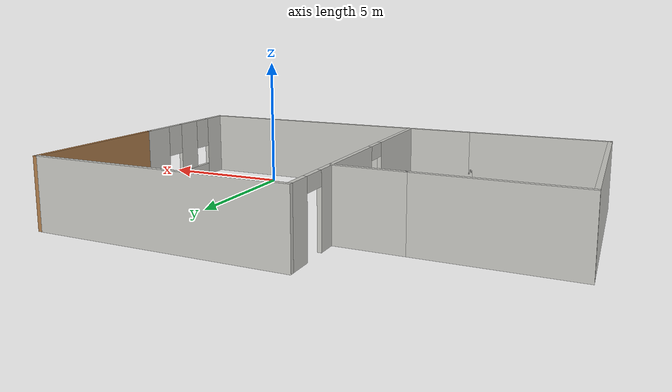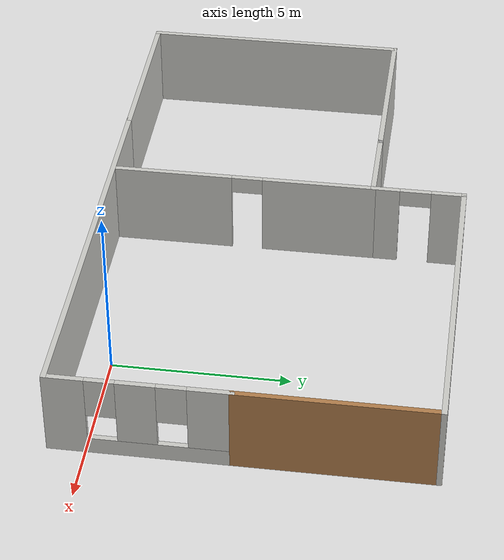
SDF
<?xml version='1.0'?>
<sdf version='1.6'>
  <model name='single_floor_building'>
    <pose frame=''>-4.94113 4.13185 0 0 -0 0</pose>
    <link name='Wall_11'>
      <collision name='Wall_11_Collision'>
        <geometry>
          <box>
            <size>11.75 0.15 2.5</size>
          </box>
        </geometry>
        <pose frame=''>0 0 1.25 0 -0 0</pose>
      </collision>
      <visual name='Wall_11_Visual'>
        <pose frame=''>0 0 1.25 0 -0 0</pose>
        <geometry>
          <box>
            <size>11.75 0.15 2.5</size>
          </box>
        </geometry>
        <material>
          <script>
            <uri>file://media/materials/scripts/gazebo.material</uri>
            <name>Gazebo/CeilingTiled</name>
          </script>
          <ambient>1 1 1 1</ambient>
        </material>
        <meta>
          <layer>0</layer>
        </meta>
      </visual>
      <pose frame=''>2.475 -5.1 0 0 -0 0</pose>
    </link>
    <link name='Wall_12'>
      <pose frame=''>8.275 -2.675 0 0 -0 1.5708</pose>
      <visual name='Wall_12_Visual_0'>
        <pose frame=''>-1.94085 0 1.25 0 -0 0</pose>
        <geometry>
          <box>
            <size>1.1183 0.15 2.5</size>
          </box>
        </geometry>
        <material>
          <script>
            <uri>file://media/materials/scripts/gazebo.material</uri>
            <name>Gazebo/CeilingTiled</name>
          </script>
          <ambient>1 1 1 1</ambient>
        </material>
        <meta>
          <layer>0</layer>
        </meta>
      </visual>
      <collision name='Wall_12_Collision_0'>
        <geometry>
          <box>
            <size>1.1183 0.15 2.5</size>
          </box>
        </geometry>
        <pose frame=''>-1.94085 0 1.25 0 -0 0</pose>
      </collision>
      <visual name='Wall_12_Visual_1'>
        <pose frame=''>0.559148 0 0.25 0 -0 0</pose>
        <geometry>
          <box>
            <size>3.8817 0.15 0.5</size>
          </box>
        </geometry>
        <material>
          <script>
            <uri>file://media/materials/scripts/gazebo.material</uri>
            <name>Gazebo/CeilingTiled</name>
          </script>
          <ambient>1 1 1 1</ambient>
        </material>
        <meta>
          <layer>0</layer>
        </meta>
      </visual>
      <collision name='Wall_12_Collision_1'>
        <geometry>
          <box>
            <size>3.8817 0.15 0.5</size>
          </box>
        </geometry>
        <pose frame=''>0.559148 0 0.25 0 -0 0</pose>
      </collision>
      <visual name='Wall_12_Visual_2'>
        <pose frame=''>-0.054775 0 1.5 0 -0 0</pose>
        <geometry>
          <box>
            <size>1.05386 0.15 2</size>
          </box>
        </geometry>
        <material>
          <script>
            <uri>file://media/materials/scripts/gazebo.material</uri>
            <name>Gazebo/CeilingTiled</name>
          </script>
          <ambient>1 1 1 1</ambient>
        </material>
        <meta>
          <layer>0</layer>
        </meta>
      </visual>
      <collision name='Wall_12_Collision_2'>
        <geometry>
          <box>
            <size>1.05386 0.15 2</size>
          </box>
        </geometry>
        <pose frame=''>-0.054775 0 1.5 0 -0 0</pose>
      </collision>
      <visual name='Wall_12_Visual_3'>
        <pose frame=''>1.88608 0 1.5 0 -0 0</pose>
        <geometry>
          <box>
            <size>1.22785 0.15 2</size>
          </box>
        </geometry>
        <material>
          <script>
            <uri>file://media/materials/scripts/gazebo.material</uri>
            <name>Gazebo/CeilingTiled</name>
          </script>
          <ambient>1 1 1 1</ambient>
        </material>
        <meta>
          <layer>0</layer>
        </meta>
      </visual>
      <collision name='Wall_12_Collision_3'>
        <geometry>
          <box>
            <size>1.22785 0.15 2</size>
          </box>
        </geometry>
        <pose frame=''>1.88608 0 1.5 0 -0 0</pose>
      </collision>
      <visual name='Wall_12_Visual_4'>
        <pose frame=''>-0.981703 0 1.9 0 -0 0</pose>
        <geometry>
          <box>
            <size>0.8 0.15 1.2</size>
          </box>
        </geometry>
        <material>
          <script>
            <uri>file://media/materials/scripts/gazebo.material</uri>
            <name>Gazebo/CeilingTiled</name>
          </script>
          <ambient>1 1 1 1</ambient>
        </material>
        <meta>
          <layer>0</layer>
        </meta>
      </visual>
      <collision name='Wall_12_Collision_4'>
        <geometry>
          <box>
            <size>0.8 0.15 1.2</size>
          </box>
        </geometry>
        <pose frame=''>-0.981703 0 1.9 0 -0 0</pose>
      </collision>
      <visual name='Wall_12_Visual_5'>
        <pose frame=''>0.872152 0 1.9 0 -0 0</pose>
        <geometry>
          <box>
            <size>0.8 0.15 1.2</size>
          </box>
        </geometry>
        <material>
          <script>
            <uri>file://media/materials/scripts/gazebo.material</uri>
            <name>Gazebo/CeilingTiled</name>
          </script>
          <ambient>1 1 1 1</ambient>
        </material>
        <meta>
          <layer>0</layer>
        </meta>
      </visual>
      <collision name='Wall_12_Collision_5'>
        <geometry>
          <box>
            <size>0.8 0.15 1.2</size>
          </box>
        </geometry>
        <pose frame=''>0.872152 0 1.9 0 -0 0</pose>
      </collision>
    </link>
    <link name='Wall_14'>
      <collision name='Wall_14_Collision'>
        <geometry>
          <box>
            <size>5.5 0.15 2.5</size>
          </box>
        </geometry>
        <pose frame=''>0 0 1.25 0 -0 0</pose>
      </collision>
      <visual name='Wall_14_Visual'>
        <pose frame=''>0 0 1.25 0 -0 0</pose>
        <geometry>
          <box>
            <size>5.5 0.15 2.5</size>
          </box>
        </geometry>
        <material>
          <script>
            <uri>file://media/materials/scripts/gazebo.material</uri>
            <name>Gazebo/Wood</name>
          </script>
          <ambient>1 1 1 1</ambient>
        </material>
        <meta>
          <layer>0</layer>
        </meta>
      </visual>
      <pose frame=''>8.275 2.425 0 0 -0 1.5708</pose>
    </link>
    <link name='Wall_15'>
      <collision name='Wall_15_Collision'>
        <geometry>
          <box>
            <size>9.25 0.15 2.5</size>
          </box>
        </geometry>
        <pose frame=''>0 0 1.25 0 -0 0</pose>
      </collision>
      <visual name='Wall_15_Visual'>
        <pose frame=''>0 0 1.25 0 -0 0</pose>
        <geometry>
          <box>
            <size>9.25 0.15 2.5</size>
          </box>
        </geometry>
        <material>
          <script>
            <uri>file://media/materials/scripts/gazebo.material</uri>
            <name>Gazebo/CeilingTiled</name>
          </script>
          <ambient>1 1 1 1</ambient>
        </material>
        <meta>
          <layer>0</layer>
        </meta>
      </visual>
      <pose frame=''>3.725 5.1 0 0 -0 3.14159</pose>
    </link>
    <link name='Wall_16'>
      <pose frame=''>-0.825 3.8 0 0 0 -1.5708</pose>
      <visual name='Wall_16_Visual_0'>
        <pose frame=''>-0.872609 0 1.25 0 -0 0</pose>
        <geometry>
          <box>
            <size>1.00478 0.15 2.5</size>
          </box>
        </geometry>
        <material>
          <script>
            <uri>file://media/materials/scripts/gazebo.material</uri>
            <name>Gazebo/CeilingTiled</name>
          </script>
          <ambient>1 1 1 1</ambient>
        </material>
        <meta>
          <layer>0</layer>
        </meta>
      </visual>
      <collision name='Wall_16_Collision_0'>
        <geometry>
          <box>
            <size>1.00478 0.15 2.5</size>
          </box>
        </geometry>
        <pose frame=''>-0.872609 0 1.25 0 -0 0</pose>
      </collision>
      <visual name='Wall_16_Visual_1'>
        <pose frame=''>0.952391 0 1.25 0 -0 0</pose>
        <geometry>
          <box>
            <size>0.845218 0.15 2.5</size>
          </box>
        </geometry>
        <material>
          <script>
            <uri>file://media/materials/scripts/gazebo.material</uri>
            <name>Gazebo/CeilingTiled</name>
          </script>
          <ambient>1 1 1 1</ambient>
        </material>
        <meta>
          <layer>0</layer>
        </meta>
      </visual>
      <collision name='Wall_16_Collision_1'>
        <geometry>
          <box>
            <size>0.845218 0.15 2.5</size>
          </box>
        </geometry>
        <pose frame=''>0.952391 0 1.25 0 -0 0</pose>
      </collision>
      <visual name='Wall_16_Visual_2'>
        <pose frame=''>0.079782 0 2.25 0 -0 0</pose>
        <geometry>
          <box>
            <size>0.9 0.15 0.5</size>
          </box>
        </geometry>
        <material>
          <script>
            <uri>file://media/materials/scripts/gazebo.material</uri>
            <name>Gazebo/CeilingTiled</name>
          </script>
          <ambient>1 1 1 1</ambient>
        </material>
        <meta>
          <layer>0</layer>
        </meta>
      </visual>
      <collision name='Wall_16_Collision_2'>
        <geometry>
          <box>
            <size>0.9 0.15 0.5</size>
          </box>
        </geometry>
        <pose frame=''>0.079782 0 2.25 0 -0 0</pose>
      </collision>
    </link>
    <link name='Wall_17'>
      <collision name='Wall_17_Collision'>
        <geometry>
          <box>
            <size>2.5 0.15 2.5</size>
          </box>
        </geometry>
        <pose frame=''>0 0 1.25 0 -0 0</pose>
      </collision>
      <visual name='Wall_17_Visual'>
        <pose frame=''>0 0 1.25 0 -0 0</pose>
        <geometry>
          <box>
            <size>2.5 0.15 2.5</size>
          </box>
        </geometry>
        <material>
          <script>
            <uri>file://media/materials/scripts/gazebo.material</uri>
            <name>Gazebo/CeilingTiled</name>
          </script>
          <ambient>1 1 1 1</ambient>
        </material>
        <meta>
          <layer>0</layer>
        </meta>
      </visual>
      <pose frame=''>-2 2.5 0 0 -0 3.14159</pose>
    </link>
    <link name='Wall_18'>
      <collision name='Wall_18_Collision'>
        <geometry>
          <box>
            <size>0.15 0.15 2.5</size>
          </box>
        </geometry>
        <pose frame=''>0 0 1.25 0 -0 0</pose>
      </collision>
      <visual name='Wall_18_Visual'>
        <pose frame=''>0 0 1.25 0 -0 0</pose>
        <geometry>
          <box>
            <size>0.15 0.15 2.5</size>
          </box>
        </geometry>
        <material>
          <script>
            <uri>file://media/materials/scripts/gazebo.material</uri>
            <name>Gazebo/Grey</name>
          </script>
          <ambient>1 1 1 1</ambient>
        </material>
        <meta>
          <layer>0</layer>
        </meta>
      </visual>
      <pose frame=''>-3.175 2.5 0 0 -0 0</pose>
    </link>
    <link name='Wall_19'>
      <collision name='Wall_19_Collision'>
        <geometry>
          <box>
            <size>5.25 0.15 2.5</size>
          </box>
        </geometry>
        <pose frame=''>0 0 1.25 0 -0 0</pose>
      </collision>
      <visual name='Wall_19_Visual'>
        <pose frame=''>0 0 1.25 0 -0 0</pose>
        <geometry>
          <box>
            <size>5.25 0.15 2.5</size>
          </box>
        </geometry>
        <material>
          <script>
            <uri>file://media/materials/scripts/gazebo.material</uri>
            <name>Gazebo/CeilingTiled</name>
          </script>
          <ambient>1 1 1 1</ambient>
        </material>
        <meta>
          <layer>0</layer>
        </meta>
      </visual>
      <pose frame=''>-5.725 2.5 0 0 -0 3.14159</pose>
    </link>
    <link name='Wall_20'>
      <collision name='Wall_20_Collision'>
        <geometry>
          <box>
            <size>7.75 0.15 2.5</size>
          </box>
        </geometry>
        <pose frame=''>0 0 1.25 0 -0 0</pose>
      </collision>
      <visual name='Wall_20_Visual'>
        <pose frame=''>0 0 1.25 0 -0 0</pose>
        <geometry>
          <box>
            <size>7.75 0.15 2.5</size>
          </box>
        </geometry>
        <material>
          <script>
            <uri>file://media/materials/scripts/gazebo.material</uri>
            <name>Gazebo/CeilingTiled</name>
          </script>
          <ambient>1 1 1 1</ambient>
        </material>
        <meta>
          <layer>0</layer>
        </meta>
      </visual>
      <pose frame=''>-8.275 -1.3 0 0 0 -1.5708</pose>
    </link>
    <link name='Wall_21'>
      <collision name='Wall_21_Collision'>
        <geometry>
          <box>
            <size>5.1 0.15 2.5</size>
          </box>
        </geometry>
        <pose frame=''>0 0 1.25 0 -0 0</pose>
      </collision>
      <visual name='Wall_21_Visual'>
        <pose frame=''>0 0 1.25 0 -0 0</pose>
        <geometry>
          <box>
            <size>5.1 0.15 2.5</size>
          </box>
        </geometry>
        <material>
          <script>
            <uri>file://media/materials/scripts/gazebo.material</uri>
            <name>Gazebo/CeilingTiled</name>
          </script>
          <ambient>1 1 1 1</ambient>
        </material>
        <meta>
          <layer>0</layer>
        </meta>
      </visual>
      <pose frame=''>-5.8 -5.1 0 0 -0 0</pose>
    </link>
    <link name='Wall_23'>
      <pose frame=''>-0.825 -1.3 0 0 0 -1.5708</pose>
      <visual name='Wall_23_Visual_0'>
        <pose frame=''>-2.23436 0 1.25 0 -0 0</pose>
        <geometry>
          <box>
            <size>3.28129 0.15 2.5</size>
          </box>
        </geometry>
        <material>
          <script>
            <uri>file://media/materials/scripts/gazebo.material</uri>
            <name>Gazebo/CeilingTiled</name>
          </script>
          <ambient>0.435294 0.796078 0.67451 1</ambient>
        </material>
        <meta>
          <layer>0</layer>
        </meta>
      </visual>
      <collision name='Wall_23_Collision_0'>
        <geometry>
          <box>
            <size>3.28129 0.15 2.5</size>
          </box>
        </geometry>
        <pose frame=''>-2.23436 0 1.25 0 -0 0</pose>
      </collision>
      <visual name='Wall_23_Visual_1'>
        <pose frame=''>2.09064 0 1.25 0 -0 0</pose>
        <geometry>
          <box>
            <size>3.56872 0.15 2.5</size>
          </box>
        </geometry>
        <material>
          <script>
            <uri>file://media/materials/scripts/gazebo.material</uri>
            <name>Gazebo/CeilingTiled</name>
          </script>
          <ambient>0.435294 0.796078 0.67451 1</ambient>
        </material>
        <meta>
          <layer>0</layer>
        </meta>
      </visual>
      <collision name='Wall_23_Collision_1'>
        <geometry>
          <box>
            <size>3.56872 0.15 2.5</size>
          </box>
        </geometry>
        <pose frame=''>2.09064 0 1.25 0 -0 0</pose>
      </collision>
      <visual name='Wall_23_Visual_2'>
        <pose frame=''>-0.143715 0 2.25 0 -0 0</pose>
        <geometry>
          <box>
            <size>0.9 0.15 0.5</size>
          </box>
        </geometry>
        <material>
          <script>
            <uri>file://media/materials/scripts/gazebo.material</uri>
            <name>Gazebo/CeilingTiled</name>
          </script>
          <ambient>0.435294 0.796078 0.67451 1</ambient>
        </material>
        <meta>
          <layer>0</layer>
        </meta>
      </visual>
      <collision name='Wall_23_Collision_2'>
        <geometry>
          <box>
            <size>0.9 0.15 0.5</size>
          </box>
        </geometry>
        <pose frame=''>-0.143715 0 2.25 0 -0 0</pose>
      </collision>
    </link>
    <static>1</static>
  </model>
</sdf>
